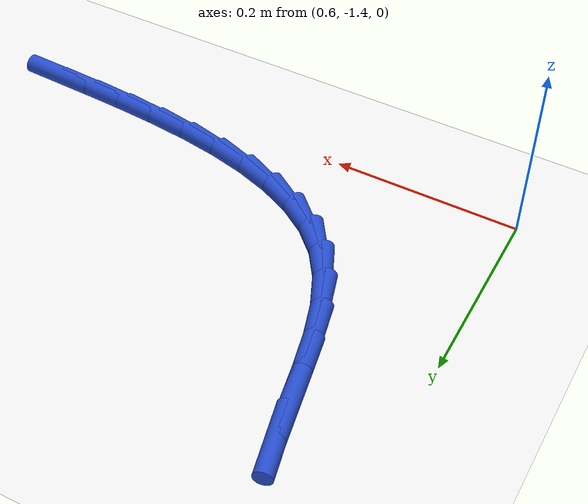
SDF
<sdf version="1.6">
 <world name="default">
  <model name="ground_plane">
   <static>1</static>
   <link name="link">
    <collision name="collision">
     <geometry><plane><normal>0 0 1</normal><size>100 100</size></plane></geometry>
     <surface><friction><ode><mu>100</mu><mu2>50</mu2></ode></friction></surface>
    </collision>
    <visual name="visual">
     <cast_shadows>0</cast_shadows>
     <geometry><plane><normal>0 0 1</normal><size>100 100</size></plane></geometry>
     <material>
      <script><uri>file://media/materials/scripts/gazebo.material</uri><name>Gazebo/WhiteGlow</name></script>
     </material>
    </visual>
   </link>
  </model>
  <model name="line">
   <link name="link_160">
    <pose>1.1354152325733518 -1.371002991509671 0.01 0 1.57 -0.041723647693550366</pose>
    <collision name="collision">
     <geometry><cylinder><radius>0.01</radius><length>0.08</length></cylinder></geometry>
    </collision>
    <visual name="visual">
     <material>
      <script><name>Gazebo/Blue</name><uri>file://media/materials/scripts/gazebo.material</uri></script>
     </material>
     <geometry><cylinder><radius>0.01</radius><length>0.08</length></cylinder></geometry>
    </visual>
   </link>
   <link name="link_161">
    <pose>1.0919130062575857 -1.3691868659475268 0.01 0 1.57 -0.055061623474264534</pose>
    <collision name="collision">
     <geometry><cylinder><radius>0.01</radius><length>0.08</length></cylinder></geometry>
    </collision>
    <visual name="visual">
     <material>
      <script><name>Gazebo/Blue</name><uri>file://media/materials/scripts/gazebo.material</uri></script>
     </material>
     <geometry><cylinder><radius>0.01</radius><length>0.08</length></cylinder></geometry>
    </visual>
   </link>
   <link name="link_162">
    <pose>1.0480652037294913 -1.3667700918830832 0.01 0 1.57 -0.07981862206950635</pose>
    <collision name="collision">
     <geometry><cylinder><radius>0.01</radius><length>0.08</length></cylinder></geometry>
    </collision>
    <visual name="visual">
     <material>
      <script><name>Gazebo/Blue</name><uri>file://media/materials/scripts/gazebo.material</uri></script>
     </material>
     <geometry><cylinder><radius>0.01</radius><length>0.08</length></cylinder></geometry>
    </visual>
   </link>
   <link name="link_163">
    <pose>1.0044920281348586 -1.3632847361540197 0.01 0 1.57 -0.11712928415648936</pose>
    <collision name="collision">
     <geometry><cylinder><radius>0.01</radius><length>0.08</length></cylinder></geometry>
    </collision>
    <visual name="visual">
     <material>
      <script><name>Gazebo/Blue</name><uri>file://media/materials/scripts/gazebo.material</uri></script>
     </material>
     <geometry><cylinder><radius>0.01</radius><length>0.08</length></cylinder></geometry>
    </visual>
   </link>
   <link name="link_164">
    <pose>0.9618136826194774 -1.3582628655980178 0.01 0 1.57 -0.16906430596348776</pose>
    <collision name="collision">
     <geometry><cylinder><radius>0.01</radius><length>0.08</length></cylinder></geometry>
    </collision>
    <visual name="visual">
     <material>
      <script><name>Gazebo/Blue</name><uri>file://media/materials/scripts/gazebo.material</uri></script>
     </material>
     <geometry><cylinder><radius>0.01</radius><length>0.08</length></cylinder></geometry>
    </visual>
   </link>
   <link name="link_165">
    <pose>0.9206503703291392 -1.3512365470527572 0.01 0 1.57 -0.2387395624402149</pose>
    <collision name="collision">
     <geometry><cylinder><radius>0.01</radius><length>0.08</length></cylinder></geometry>
    </collision>
    <visual name="visual">
     <material>
      <script><name>Gazebo/Blue</name><uri>file://media/materials/scripts/gazebo.material</uri></script>
     </material>
     <geometry><cylinder><radius>0.01</radius><length>0.08</length></cylinder></geometry>
    </visual>
   </link>
   <link name="link_166">
    <pose>0.8816222944096344 -1.3417378473559192 0.01 0 1.57 -0.33036350428673183</pose>
    <collision name="collision">
     <geometry><cylinder><radius>0.01</radius><length>0.08</length></cylinder></geometry>
    </collision>
    <visual name="visual">
     <material>
      <script><name>Gazebo/Blue</name><uri>file://media/materials/scripts/gazebo.material</uri></script>
     </material>
     <geometry><cylinder><radius>0.01</radius><length>0.08</length></cylinder></geometry>
    </visual>
   </link>
   <link name="link_167">
    <pose>0.8453496580067525 -1.3292988333451838 0.01 0 1.57 -0.44891995796184053</pose>
    <collision name="collision">
     <geometry><cylinder><radius>0.01</radius><length>0.08</length></cylinder></geometry>
    </collision>
    <visual name="visual">
     <material>
      <script><name>Gazebo/Blue</name><uri>file://media/materials/scripts/gazebo.material</uri></script>
     </material>
     <geometry><cylinder><radius>0.01</radius><length>0.08</length></cylinder></geometry>
    </visual>
   </link>
   <link name="link_168">
    <pose>0.8124526642662845 -1.3134515718582314 0.01 0 1.57 -0.5988466251935884</pose>
    <collision name="collision">
     <geometry><cylinder><radius>0.01</radius><length>0.08</length></cylinder></geometry>
    </collision>
    <visual name="visual">
     <material>
      <script><name>Gazebo/Blue</name><uri>file://media/materials/scripts/gazebo.material</uri></script>
     </material>
     <geometry><cylinder><radius>0.01</radius><length>0.08</length></cylinder></geometry>
    </visual>
   </link>
   <link name="link_169">
    <pose>0.7835515163340201 -1.2937281297327423 0.01 0 1.57 -0.7808991015662258</pose>
    <collision name="collision">
     <geometry><cylinder><radius>0.01</radius><length>0.08</length></cylinder></geometry>
    </collision>
    <visual name="visual">
     <material>
      <script><name>Gazebo/Blue</name><uri>file://media/materials/scripts/gazebo.material</uri></script>
     </material>
     <geometry><cylinder><radius>0.01</radius><length>0.08</length></cylinder></geometry>
    </visual>
   </link>
   <link name="link_170">
    <pose>0.7592664173557494 -1.2696605738063966 0.01 0 1.57 -0.9847385166032978</pose>
    <collision name="collision">
     <geometry><cylinder><radius>0.01</radius><length>0.08</length></cylinder></geometry>
    </collision>
    <visual name="visual">
     <material>
      <script><name>Gazebo/Blue</name><uri>file://media/materials/scripts/gazebo.material</uri></script>
     </material>
     <geometry><cylinder><radius>0.01</radius><length>0.08</length></cylinder></geometry>
    </visual>
   </link>
   <link name="link_171">
    <pose>0.740137524705098 -1.240845975274539 0.01 0 1.57 -1.159756099221498</pose>
    <collision name="collision">
     <geometry><cylinder><radius>0.01</radius><length>0.08</length></cylinder></geometry>
    </collision>
    <visual name="visual">
     <material>
      <script><name>Gazebo/Blue</name><uri>file://media/materials/scripts/gazebo.material</uri></script>
     </material>
     <geometry><cylinder><radius>0.01</radius><length>0.08</length></cylinder></geometry>
    </visual>
   </link>
   <link name="link_172">
    <pose>0.7256920022992903 -1.2077040470182387 0.01 0 1.57 -1.2797320092004092</pose>
    <collision name="collision">
     <geometry><cylinder><radius>0.01</radius><length>0.08</length></cylinder></geometry>
    </collision>
    <visual name="visual">
     <material>
      <script><name>Gazebo/Blue</name><uri>file://media/materials/scripts/gazebo.material</uri></script>
     </material>
     <geometry><cylinder><radius>0.01</radius><length>0.08</length></cylinder></geometry>
    </visual>
   </link>
   <link name="link_173">
    <pose>0.7147620558352724 -1.1712188704228519 0.01 0 1.57 -1.3529585415508096</pose>
    <collision name="collision">
     <geometry><cylinder><radius>0.01</radius><length>0.08</length></cylinder></geometry>
    </collision>
    <visual name="visual">
     <material>
      <script><name>Gazebo/Blue</name><uri>file://media/materials/scripts/gazebo.material</uri></script>
     </material>
     <geometry><cylinder><radius>0.01</radius><length>0.08</length></cylinder></geometry>
    </visual>
   </link>
   <link name="link_174">
    <pose>0.706166297088258 -1.1323855663593494 0.01 0 1.57 -1.387660250723848</pose>
    <collision name="collision">
     <geometry><cylinder><radius>0.01</radius><length>0.08</length></cylinder></geometry>
    </collision>
    <visual name="visual">
     <material>
      <script><name>Gazebo/Blue</name><uri>file://media/materials/scripts/gazebo.material</uri></script>
     </material>
     <geometry><cylinder><radius>0.01</radius><length>0.08</length></cylinder></geometry>
    </visual>
   </link>
   <link name="link_175">
    <pose>0.6987233378334611 -1.092199255698701 0.01 0 1.57 -1.388559309375757</pose>
    <collision name="collision">
     <geometry><cylinder><radius>0.01</radius><length>0.08</length></cylinder></geometry>
    </collision>
    <visual name="visual">
     <material>
      <script><name>Gazebo/Blue</name><uri>file://media/materials/scripts/gazebo.material</uri></script>
     </material>
     <geometry><cylinder><radius>0.01</radius><length>0.08</length></cylinder></geometry>
    </visual>
   </link>
   <link name="link_176">
    <pose>0.6912517898460954 -1.0516550593118767 0.01 0 1.57 -1.3565897239282991</pose>
    <collision name="collision">
     <geometry><cylinder><radius>0.01</radius><length>0.08</length></cylinder></geometry>
    </collision>
    <visual name="visual">
     <material>
      <script><name>Gazebo/Blue</name><uri>file://media/materials/scripts/gazebo.material</uri></script>
     </material>
     <geometry><cylinder><radius>0.01</radius><length>0.08</length></cylinder></geometry>
    </visual>
   </link>
  </model>
 </world>
</sdf>
